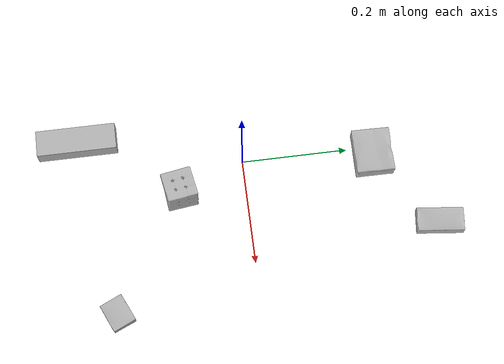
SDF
<sdf version="1.4">
  <world name="default">
    <light name="light1" type="point">
      <pose>0 0 1 0 0 0</pose>
      <diffuse>3 3 3 1</diffuse>
      <specular>3 3 3 1</specular>
    </light>
    <light name="light2" type="point">
      <pose>0 0.5 2 0 0 0</pose>
      <diffuse>1 1 1 1</diffuse>
      <specular>1 1 1 1</specular>
    </light>
    <light name="light3" type="point">
      <pose>0 0.5 2 0 0 0</pose>
      <diffuse>3 3 3 1</diffuse>
      <specular>3 3 3 1</specular>
    </light>
    <scene>
      <ambient>0.7 0.7 0.7</ambient>
    </scene>
    <model name="box1">
      <link name="link_box1">
        <collision name="default">
          <geometry>
            <mesh>
              <uri>model://jenga/collision_meshes/collision.obj</uri>
              <scale>1.0 1.0 1.0</scale>
            </mesh>
          </geometry>
          <surface>
            <friction>
              <ode>
                <mu>0.5</mu>
                <mu2>0.5</mu2>
              </ode>
            </friction>
          <contact>
        <ode>
            <max_vel>0</max_vel>
            <min_depth>0.0001</min_depth>
            <kp>1e8</kp>
        </ode>
    </contact></surface>
        </collision>
        <visual name="default">
          <geometry>
            <mesh>
              <uri>model://jenga/visual_meshes/visual.dae</uri>
              <scale>1.0 1.0 1.0</scale>
            </mesh>
          </geometry>
        </visual>
        <inertial>
          <mass>0.28879067301750183</mass>
          <pose>-2.502855807051674e-07 -0.00010250010382151231 -4.0923401684267446e-05 0.0 -7.342154049184251e-07 0.0</pose>
          <inertia>
            <ixx>7.991539e-05</ixx>
            <iyy>0.00054150453</iyy>
            <izz>0.00057810213</izz>
            <ixy>0</ixy>
            <ixz>0</ixz>
            <iyz>0</iyz>
          </inertia>
        </inertial>
      </link>
      <pose>-0.07489772886037827 -0.3087632358074188 0.014999998733401299 1.6309596969485177e-08 -2.5045705274333477e-09 1.5680086684117676</pose>
    </model>
    <model name="box2">
      <link name="link_box2">
        <collision name="default">
          <geometry>
            <mesh>
              <uri>model://sugar_box/collision_meshes/collision.obj</uri>
              <scale>0.5 0.5 0.5</scale>
            </mesh>
          </geometry>
          <surface>
            <friction>
              <ode>
                <mu>0.5</mu>
                <mu2>0.5</mu2>
              </ode>
            </friction>
          <contact>
        <ode>
            <max_vel>0</max_vel>
            <min_depth>0.0001</min_depth>
            <kp>1e8</kp>
        </ode>
    </contact></surface>
        </collision>
        <visual name="default">
          <geometry>
            <mesh>
              <uri>model://sugar_box/visual_meshes/visual.dae</uri>
              <scale>0.5 0.5 0.5</scale>
            </mesh>
          </geometry>
        </visual>
        <inertial>
          <mass>0.10389333218336105</mass>
          <pose>0.000517186417710036 1.9245549992774613e-05 -0.00018182402709499002 -0.00040462615469338603 0.0010506637547558321 0.0026153785561208315</pose>
          <inertia>
            <ixx>2.1640906e-05</ixx>
            <iyy>6.994788e-05</iyy>
            <izz>8.373595e-05</izz>
            <ixy>0</ixy>
            <ixz>0</ixz>
            <iyz>0</iyz>
          </inertia>
        </inertial>
      </link>
      <pose>0.16478155553340912 0.3502448499202728 0.011399301700294018 0.0007751855595021569 -0.023432477555929393 1.4507980912242924</pose>
    </model>
    <model name="box3">
      <link name="link_box3">
        <collision name="default">
          <geometry>
            <mesh>
              <uri>model://rubiks_cube/collision_meshes/collision.obj</uri>
              <scale>1.0 1.0 1.0</scale>
            </mesh>
          </geometry>
          <surface>
            <friction>
              <ode>
                <mu>0.5</mu>
                <mu2>0.5</mu2>
              </ode>
            </friction>
          <contact>
        <ode>
            <max_vel>0</max_vel>
            <min_depth>0.0001</min_depth>
            <kp>1e8</kp>
        </ode>
    </contact></surface>
        </collision>
        <visual name="default">
          <geometry>
            <mesh>
              <uri>model://rubiks_cube/visual_meshes/visual.dae</uri>
              <scale>1.0 1.0 1.0</scale>
            </mesh>
          </geometry>
        </visual>
        <inertial>
          <mass>0.21973572671413422</mass>
          <pose>2.6721041649580002e-05 5.256966323941015e-05 -7.264316082000732e-06 -0.054673783840129137 -0.09814154164948871 -0.03445565380518822</pose>
          <inertia>
            <ixx>0.00012141874</ixx>
            <iyy>0.000120852514</iyy>
            <izz>0.00012242487</izz>
            <ixy>0</ixy>
            <ixz>0</ixz>
            <iyz>0</iyz>
          </inertia>
        </inertial>
      </link>
      <pose>0.048516739159822464 -0.12365340441465378 0.02867897041141987 -2.570013955407096e-06 -9.403154404372876e-07 -2.9838047914622443</pose>
    </model>
    <model name="box4">
      <link name="link_box4">
        <collision name="default">
          <geometry>
            <mesh>
              <uri>model://pudding_box/collision_meshes/collision.obj</uri>
              <scale>0.5 0.5 0.5</scale>
            </mesh>
          </geometry>
          <surface>
            <friction>
              <ode>
                <mu>0.5</mu>
                <mu2>0.5</mu2>
              </ode>
            </friction>
          <contact>
        <ode>
            <max_vel>0</max_vel>
            <min_depth>0.0001</min_depth>
            <kp>1e8</kp>
        </ode>
    </contact></surface>
        </collision>
        <visual name="default">
          <geometry>
            <mesh>
              <uri>model://pudding_box/visual_meshes/visual.dae</uri>
              <scale>0.5 0.5 0.5</scale>
            </mesh>
          </geometry>
        </visual>
        <inertial>
          <mass>0.0391676165163517</mass>
          <pose>0.00024474109522998333 0.00040339428232982755 -0.0002594413817860186 0.005213101313254789 -0.0066037982630024914 0.020079830751203582</pose>
          <inertia>
            <ixx>1.1069244e-05</ixx>
            <iyy>7.447467e-06</iyy>
            <izz>1.634663e-05</izz>
            <ixy>0</ixy>
            <ixz>0</ixz>
            <iyz>0</iyz>
          </inertia>
        </inertial>
      </link>
      <pose>0.26620084047317505 -0.2608749270439148 0.009862900711596012 0.02234970734782712 -0.011390882386554956 1.9834683351697397</pose>
    </model>
    <model name="box5">
      <link name="link_box5">
        <collision name="default">
          <geometry>
            <mesh>
              <uri>model://gelatin_box/collision_meshes/collision.obj</uri>
              <scale>1.0 1.0 1.0</scale>
            </mesh>
          </geometry>
          <surface>
            <friction>
              <ode>
                <mu>0.5</mu>
                <mu2>0.5</mu2>
              </ode>
            </friction>
          <contact>
        <ode>
            <max_vel>0</max_vel>
            <min_depth>0.0001</min_depth>
            <kp>1e8</kp>
        </ode>
    </contact></surface>
        </collision>
        <visual name="default">
          <geometry>
            <mesh>
              <uri>model://gelatin_box/visual_meshes/visual.dae</uri>
              <scale>1.0 1.0 1.0</scale>
            </mesh>
          </geometry>
        </visual>
        <inertial>
          <mass>0.24157556891441345</mass>
          <pose>0.0004319618456065655 0.00011156872642459348 -0.0003640321083366871 -0.0010503718658393805 -0.0047558177571565665 0.016440565059328244</pose>
          <inertia>
            <ixx>0.00017053263</ixx>
            <iyy>0.00012181056</iyy>
            <izz>0.00025958868</izz>
            <ixy>0</ixy>
            <ixz>0</ixz>
            <iyz>0</iyz>
          </inertia>
        </inertial>
      </link>
      <pose>0.01594039425253868 0.24685490131378174 0.015168310143053532 0.005596413288546922 -0.007303369883898398 1.5440246307332335</pose>
    </model>
  <physics type="ode">
      <max_contacts>50</max_contacts>
      <ode>
        <solver>
          <type>quick</type>
          <iters>75</iters>
        </solver>
        <constraints>
          <contact_max_correcting_vel>0</contact_max_correcting_vel>
          <contact_surface_layer>0</contact_surface_layer>
        </constraints>
      </ode>
    </physics></world>
</sdf>
